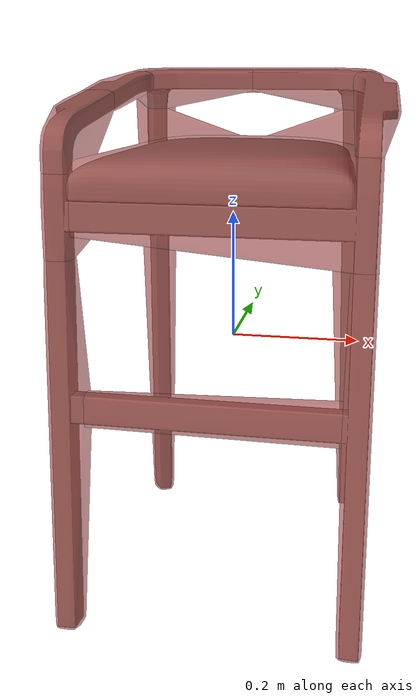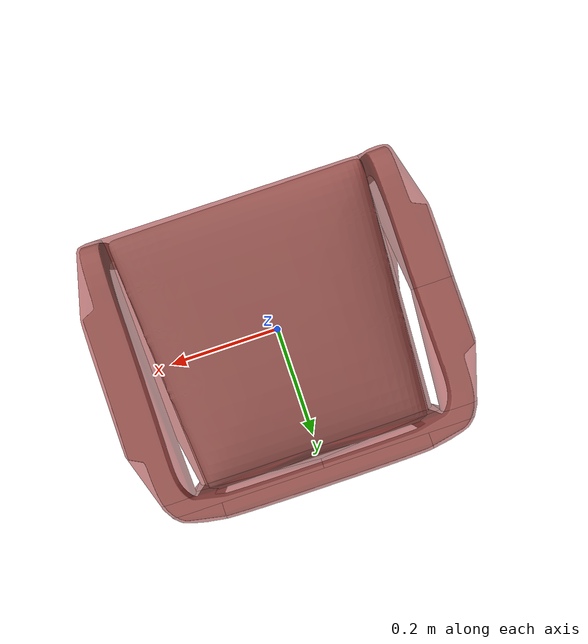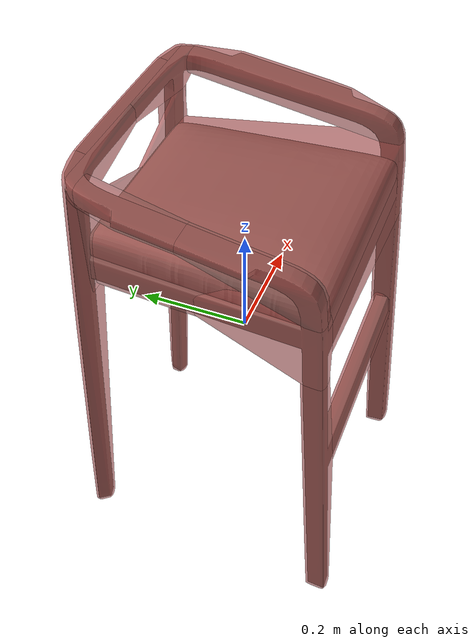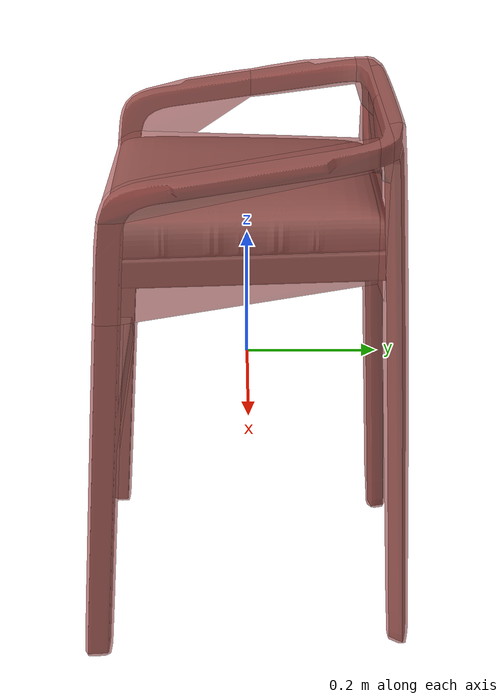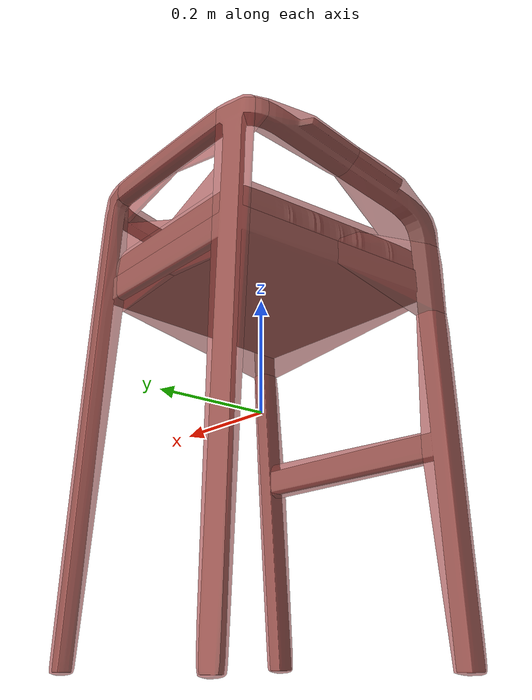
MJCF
<mujoco model="model">
  <option timestep="0.002" gravity="0.0 0.0 -9.81"/>
  <compiler angle="radian"/>
  <asset>
    <mesh file="visual/Stool009.obj" name="Stool009_vis"/>
    <mesh file="visual/Prop.obj" name="Stool009_Prop_vis"/>
    <texture file="visual/T_BC001.png" name="Stool009_Prop_material" type="2d"/>
    <material name="Stool009_Prop_material" rgba="1 1 1 1.0" texture="Stool009_Prop_material" shininess="0.2" specular="8"/>
    <texture file="visual/T_BC001.png" name="Stool009_material" type="2d"/>
    <material name="Stool009_material" rgba="1 1 1 1.0" texture="Stool009_material" shininess="0.1" specular="0.103448502657381"/>
    <mesh file="collision/collision_mesh_collision_0.obj" name="Stool009_collision_mesh_0"/>
    <mesh file="collision/collision_mesh_collision_1.obj" name="Stool009_collision_mesh_1"/>
    <mesh file="collision/collision_mesh_collision_2.obj" name="Stool009_collision_mesh_2"/>
    <mesh file="collision/collision_mesh_collision_3.obj" name="Stool009_collision_mesh_3"/>
    <mesh file="collision/collision_mesh_collision_4.obj" name="Stool009_collision_mesh_4"/>
    <mesh file="collision/collision_mesh_collision_5.obj" name="Stool009_collision_mesh_5"/>
    <mesh file="collision/collision_mesh_collision_6.obj" name="Stool009_collision_mesh_6"/>
    <mesh file="collision/collision_mesh_collision_7.obj" name="Stool009_collision_mesh_7"/>
    <mesh file="collision/collision_mesh_collision_8.obj" name="Stool009_collision_mesh_8"/>
    <mesh file="collision/collision_mesh_collision_9.obj" name="Stool009_collision_mesh_9"/>
    <mesh file="collision/collision_mesh_collision_10.obj" name="Stool009_collision_mesh_10"/>
    <mesh file="collision/collision_mesh_collision_11.obj" name="Stool009_collision_mesh_11"/>
    <mesh file="collision/collision_mesh_collision_12.obj" name="Stool009_collision_mesh_12"/>
    <mesh file="collision/collision_mesh_collision_13.obj" name="Stool009_collision_mesh_13"/>
    <mesh file="collision/collision_mesh_collision_14.obj" name="Stool009_collision_mesh_14"/>
    <mesh file="collision/collision_mesh_collision_15.obj" name="Stool009_collision_mesh_15"/>
  </asset>
  <default>
    <default class="visual">
      <geom conaffinity="0" contype="0" group="1" type="mesh"/>
    </default>
    <default class="collision">
      <geom group="0" rgba="0.5 0 0 0.5" density="1000.0"/>
    </default>
    <default class="spawn">
      <geom group="0" rgba="1 1 1 0.5" contype="0" conaffinity="0"/>
      <site group="0" rgba="1 1 1 0.5"/>
    </default>
    <default class="region">
      <geom group="1" conaffinity="0" contype="0" rgba="0 1 0 0" mass="0"/>
    </default>
  </default>
  <worldbody>
    <body>
      <body name="object">
        <geom mesh="Stool009_Prop_vis" type="mesh" solimp="0.998 0.998 0.001" solref="0.001 1" friction="0.95 0.3 0.1" class="visual" material="Stool009_Prop_material"/>
        <body name="Stool009">
          <geom mesh="Stool009_vis" type="mesh" solimp="0.998 0.998 0.001" solref="0.001 1" friction="0.95 0.3 0.1" class="visual" material="Stool009_material"/>
        </body>
        <geom class="region" name="reg_bbox" type="box" pos="-3.3349999999932045e-06 -0.0003305549999999824 -0.0004673800000000172" size="0.248248675 0.25192162500000004 0.41410396"/>
        <geom mesh="Stool009_collision_mesh_0" type="mesh" class="collision"/>
        <geom mesh="Stool009_collision_mesh_1" type="mesh" class="collision"/>
        <geom mesh="Stool009_collision_mesh_2" type="mesh" class="collision"/>
        <geom mesh="Stool009_collision_mesh_3" type="mesh" class="collision"/>
        <geom mesh="Stool009_collision_mesh_4" type="mesh" class="collision"/>
        <geom mesh="Stool009_collision_mesh_5" type="mesh" class="collision"/>
        <geom mesh="Stool009_collision_mesh_6" type="mesh" class="collision"/>
        <geom mesh="Stool009_collision_mesh_7" type="mesh" class="collision"/>
        <geom mesh="Stool009_collision_mesh_8" type="mesh" class="collision"/>
        <geom mesh="Stool009_collision_mesh_9" type="mesh" class="collision"/>
        <geom mesh="Stool009_collision_mesh_10" type="mesh" class="collision"/>
        <geom mesh="Stool009_collision_mesh_11" type="mesh" class="collision"/>
        <geom mesh="Stool009_collision_mesh_12" type="mesh" class="collision"/>
        <geom mesh="Stool009_collision_mesh_13" type="mesh" class="collision"/>
        <geom mesh="Stool009_collision_mesh_14" type="mesh" class="collision"/>
        <geom mesh="Stool009_collision_mesh_15" type="mesh" class="collision"/>
      </body>
    </body>
  </worldbody>
  <actuator/>
</mujoco>
